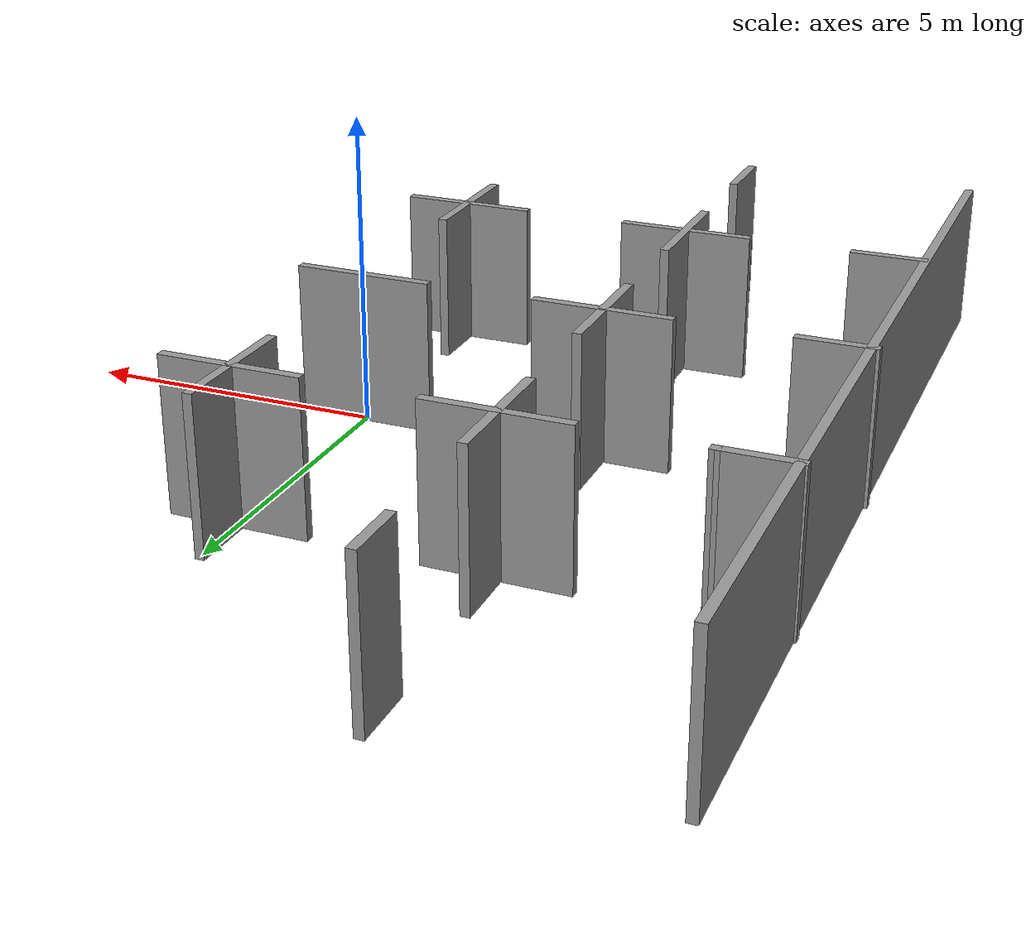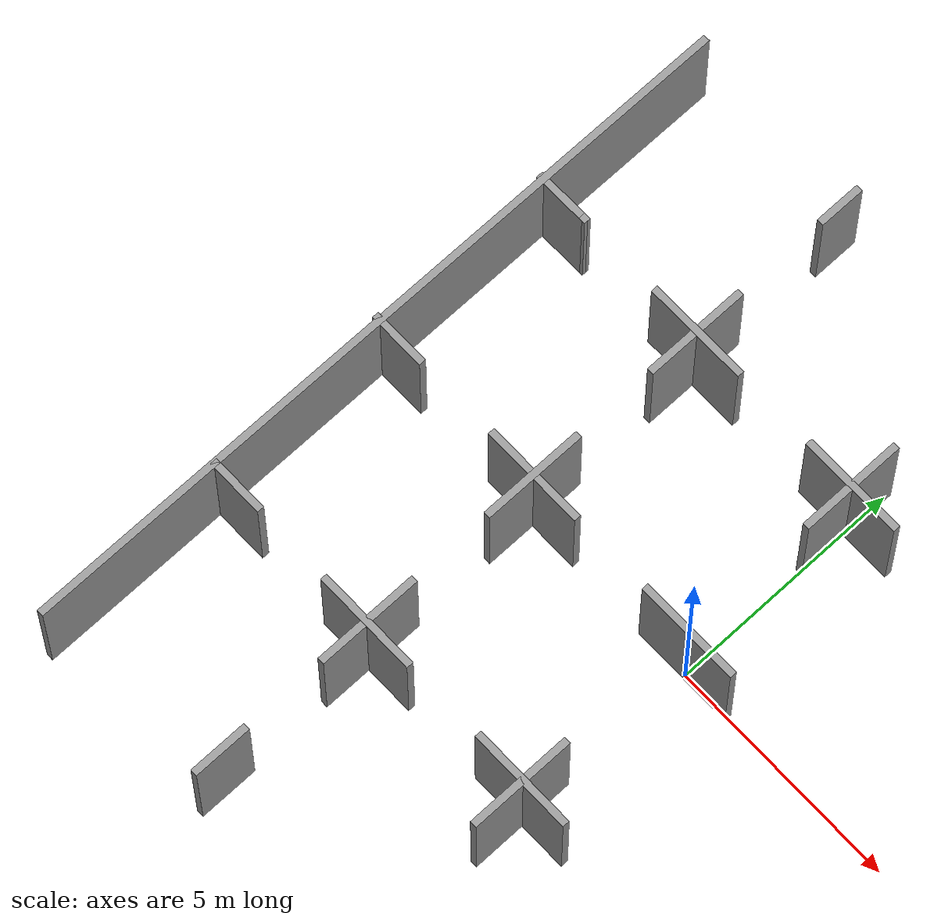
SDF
<sdf version="1.6">
 <model name="grid">
  <link name="Wall_100">
   <pose>-4.03249 -4.01202 0 0 -0 0</pose>
   <visual name="Wall_100_Visual">
    <pose>0 0 1.25 0 -0 0</pose>
    <geometry><box><size>2.25 0.15 2.5</size></box></geometry>
    <material>
     <script><uri>file://media/materials/scripts/gazebo.material</uri><name>Gazebo/Grey</name></script>
     <ambient>1 1 1 1</ambient>
     <diffuse>0.7 0.7 0.7 1</diffuse>
     <specular>0.01 0.01 0.01 1</specular>
     <emissive>0 0 0 1</emissive>
    </material>
   </visual>
   <collision name="Wall_100_Collision">
    <pose>0 0 1.25 0 -0 0</pose>
    <geometry><box><size>2.25 0.15 2.5</size></box></geometry>
    <surface>
     <friction>
      <ode><mu>1</mu><mu2>1</mu2><fdir1>0 0 0</fdir1><slip1>0</slip1><slip2>0</slip2></ode>
      <torsional>
       <coefficient>1</coefficient>
       <patch_radius>0</patch_radius>
       <surface_radius>0</surface_radius>
       <use_patch_radius>1</use_patch_radius>
       <ode><slip>0</slip></ode>
      </torsional>
     </friction>
     <bounce><restitution_coefficient>0</restitution_coefficient><threshold>1e+06</threshold></bounce>
     <contact>
      <collide_without_contact>0</collide_without_contact>
      <collide_without_contact_bitmask>1</collide_without_contact_bitmask>
      <collide_bitmask>1</collide_bitmask>
      <ode>
       <soft_cfm>0</soft_cfm>
       <soft_erp>0.2</soft_erp>
       <kp>1e+13</kp>
       <kd>1</kd>
       <max_vel>0.01</max_vel>
       <min_depth>0</min_depth>
      </ode>
      <bullet>
       <split_impulse>1</split_impulse>
       <split_impulse_penetration_threshold>-0.01</split_impulse_penetration_threshold>
       <soft_cfm>0</soft_cfm>
       <soft_erp>0.2</soft_erp>
       <kp>1e+13</kp>
       <kd>1</kd>
      </bullet>
     </contact>
    </surface>
   </collision>
  </link>
  <link name="Wall_102">
   <pose>-0.033055 0.014999 0 0 -0 0</pose>
   <visual name="Wall_102_Visual">
    <pose>0 0 1.25 0 -0 0</pose>
    <geometry><box><size>2.25 0.15 2.5</size></box></geometry>
    <material>
     <script><uri>file://media/materials/scripts/gazebo.material</uri><name>Gazebo/Grey</name></script>
     <ambient>1 1 1 1</ambient>
     <diffuse>0.7 0.7 0.7 1</diffuse>
     <specular>0.01 0.01 0.01 1</specular>
     <emissive>0 0 0 1</emissive>
    </material>
   </visual>
   <collision name="Wall_102_Collision">
    <pose>0 0 1.25 0 -0 0</pose>
    <geometry><box><size>2.25 0.15 2.5</size></box></geometry>
    <surface>
     <friction>
      <ode><mu>1</mu><mu2>1</mu2><fdir1>0 0 0</fdir1><slip1>0</slip1><slip2>0</slip2></ode>
      <torsional>
       <coefficient>1</coefficient>
       <patch_radius>0</patch_radius>
       <surface_radius>0</surface_radius>
       <use_patch_radius>1</use_patch_radius>
       <ode><slip>0</slip></ode>
      </torsional>
     </friction>
     <bounce><restitution_coefficient>0</restitution_coefficient><threshold>1e+06</threshold></bounce>
     <contact>
      <collide_without_contact>0</collide_without_contact>
      <collide_without_contact_bitmask>1</collide_without_contact_bitmask>
      <collide_bitmask>1</collide_bitmask>
      <ode>
       <soft_cfm>0</soft_cfm>
       <soft_erp>0.2</soft_erp>
       <kp>1e+13</kp>
       <kd>1</kd>
       <max_vel>0.01</max_vel>
       <min_depth>0</min_depth>
      </ode>
      <bullet>
       <split_impulse>1</split_impulse>
       <split_impulse_penetration_threshold>-0.01</split_impulse_penetration_threshold>
       <soft_cfm>0</soft_cfm>
       <soft_erp>0.2</soft_erp>
       <kp>1e+13</kp>
       <kd>1</kd>
      </bullet>
     </contact>
    </surface>
   </collision>
  </link>
  <link name="Wall_11">
   <pose>-6.98644 4.04261 0 0 -0 0</pose>
   <visual name="Wall_11_Visual">
    <pose>0 0 1.25 0 -0 0</pose>
    <geometry><box><size>0.15 0.15 2.5</size></box></geometry>
    <material>
     <script><uri>file://media/materials/scripts/gazebo.material</uri><name>Gazebo/Grey</name></script>
     <ambient>1 1 1 1</ambient>
     <diffuse>0.7 0.7 0.7 1</diffuse>
     <specular>0.01 0.01 0.01 1</specular>
     <emissive>0 0 0 1</emissive>
    </material>
   </visual>
   <collision name="Wall_11_Collision">
    <pose>0 0 1.25 0 -0 0</pose>
    <geometry><box><size>0.15 0.15 2.5</size></box></geometry>
    <surface>
     <friction>
      <ode><mu>1</mu><mu2>1</mu2><fdir1>0 0 0</fdir1><slip1>0</slip1><slip2>0</slip2></ode>
      <torsional>
       <coefficient>1</coefficient>
       <patch_radius>0</patch_radius>
       <surface_radius>0</surface_radius>
       <use_patch_radius>1</use_patch_radius>
       <ode><slip>0</slip></ode>
      </torsional>
     </friction>
     <bounce><restitution_coefficient>0</restitution_coefficient><threshold>1e+06</threshold></bounce>
     <contact>
      <collide_without_contact>0</collide_without_contact>
      <collide_without_contact_bitmask>1</collide_without_contact_bitmask>
      <collide_bitmask>1</collide_bitmask>
      <ode>
       <soft_cfm>0</soft_cfm>
       <soft_erp>0.2</soft_erp>
       <kp>1e+13</kp>
       <kd>1</kd>
       <max_vel>0.01</max_vel>
       <min_depth>0</min_depth>
      </ode>
      <bullet>
       <split_impulse>1</split_impulse>
       <split_impulse_penetration_threshold>-0.01</split_impulse_penetration_threshold>
       <soft_cfm>0</soft_cfm>
       <soft_erp>0.2</soft_erp>
       <kp>1e+13</kp>
       <kd>1</kd>
      </bullet>
     </contact>
    </surface>
   </collision>
  </link>
  <link name="Wall_15">
   <pose>-7.5627 0.013696 0 0 -0 0</pose>
   <visual name="Wall_15_Visual">
    <pose>0 0 1.25 0 -0 0</pose>
    <geometry><box><size>1.25 0.15 2.5</size></box></geometry>
    <material>
     <script><uri>file://media/materials/scripts/gazebo.material</uri><name>Gazebo/Grey</name></script>
     <ambient>1 1 1 1</ambient>
     <diffuse>0.7 0.7 0.7 1</diffuse>
     <specular>0.01 0.01 0.01 1</specular>
     <emissive>0 0 0 1</emissive>
    </material>
   </visual>
   <collision name="Wall_15_Collision">
    <pose>0 0 1.25 0 -0 0</pose>
    <geometry><box><size>1.25 0.15 2.5</size></box></geometry>
    <surface>
     <friction>
      <ode><mu>1</mu><mu2>1</mu2><fdir1>0 0 0</fdir1><slip1>0</slip1><slip2>0</slip2></ode>
      <torsional>
       <coefficient>1</coefficient>
       <patch_radius>0</patch_radius>
       <surface_radius>0</surface_radius>
       <use_patch_radius>1</use_patch_radius>
       <ode><slip>0</slip></ode>
      </torsional>
     </friction>
     <bounce><restitution_coefficient>0</restitution_coefficient><threshold>1e+06</threshold></bounce>
     <contact>
      <collide_without_contact>0</collide_without_contact>
      <collide_without_contact_bitmask>1</collide_without_contact_bitmask>
      <collide_bitmask>1</collide_bitmask>
      <ode>
       <soft_cfm>0</soft_cfm>
       <soft_erp>0.2</soft_erp>
       <kp>1e+13</kp>
       <kd>1</kd>
       <max_vel>0.01</max_vel>
       <min_depth>0</min_depth>
      </ode>
      <bullet>
       <split_impulse>1</split_impulse>
       <split_impulse_penetration_threshold>-0.01</split_impulse_penetration_threshold>
       <soft_cfm>0</soft_cfm>
       <soft_erp>0.2</soft_erp>
       <kp>1e+13</kp>
       <kd>1</kd>
      </bullet>
     </contact>
    </surface>
   </collision>
  </link>
  <link name="Wall_21">
   <pose>-0.027047 3.99209 0 0 0 -1.5708</pose>
   <visual name="Wall_21_Visual">
    <pose>0 0 1.25 0 -0 0</pose>
    <geometry><box><size>2.25 0.15 2.5</size></box></geometry>
    <material>
     <script><uri>file://media/materials/scripts/gazebo.material</uri><name>Gazebo/Grey</name></script>
     <ambient>1 1 1 1</ambient>
     <diffuse>0.7 0.7 0.7 1</diffuse>
     <specular>0.01 0.01 0.01 1</specular>
     <emissive>0 0 0 1</emissive>
    </material>
   </visual>
   <collision name="Wall_21_Collision">
    <pose>0 0 1.25 0 -0 0</pose>
    <geometry><box><size>2.25 0.15 2.5</size></box></geometry>
    <surface>
     <friction>
      <ode><mu>1</mu><mu2>1</mu2><fdir1>0 0 0</fdir1><slip1>0</slip1><slip2>0</slip2></ode>
      <torsional>
       <coefficient>1</coefficient>
       <patch_radius>0</patch_radius>
       <surface_radius>0</surface_radius>
       <use_patch_radius>1</use_patch_radius>
       <ode><slip>0</slip></ode>
      </torsional>
     </friction>
     <bounce><restitution_coefficient>0</restitution_coefficient><threshold>1e+06</threshold></bounce>
     <contact>
      <collide_without_contact>0</collide_without_contact>
      <collide_without_contact_bitmask>1</collide_without_contact_bitmask>
      <collide_bitmask>1</collide_bitmask>
      <ode>
       <soft_cfm>0</soft_cfm>
       <soft_erp>0.2</soft_erp>
       <kp>1e+13</kp>
       <kd>1</kd>
       <max_vel>0.01</max_vel>
       <min_depth>0</min_depth>
      </ode>
      <bullet>
       <split_impulse>1</split_impulse>
       <split_impulse_penetration_threshold>-0.01</split_impulse_penetration_threshold>
       <soft_cfm>0</soft_cfm>
       <soft_erp>0.2</soft_erp>
       <kp>1e+13</kp>
       <kd>1</kd>
      </bullet>
     </contact>
    </surface>
   </collision>
  </link>
  <link name="Wall_23">
   <pose>-0.019757 4.0163 0 0 -0 0</pose>
   <visual name="Wall_23_Visual">
    <pose>0 0 1.25 0 -0 0</pose>
    <geometry><box><size>2.25 0.15 2.5</size></box></geometry>
    <material>
     <script><uri>file://media/materials/scripts/gazebo.material</uri><name>Gazebo/Grey</name></script>
     <ambient>1 1 1 1</ambient>
     <diffuse>0.7 0.7 0.7 1</diffuse>
     <specular>0.01 0.01 0.01 1</specular>
     <emissive>0 0 0 1</emissive>
    </material>
   </visual>
   <collision name="Wall_23_Collision">
    <pose>0 0 1.25 0 -0 0</pose>
    <geometry><box><size>2.25 0.15 2.5</size></box></geometry>
    <surface>
     <friction>
      <ode><mu>1</mu><mu2>1</mu2><fdir1>0 0 0</fdir1><slip1>0</slip1><slip2>0</slip2></ode>
      <torsional>
       <coefficient>1</coefficient>
       <patch_radius>0</patch_radius>
       <surface_radius>0</surface_radius>
       <use_patch_radius>1</use_patch_radius>
       <ode><slip>0</slip></ode>
      </torsional>
     </friction>
     <bounce><restitution_coefficient>0</restitution_coefficient><threshold>1e+06</threshold></bounce>
     <contact>
      <collide_without_contact>0</collide_without_contact>
      <collide_without_contact_bitmask>1</collide_without_contact_bitmask>
      <collide_bitmask>1</collide_bitmask>
      <ode>
       <soft_cfm>0</soft_cfm>
       <soft_erp>0.2</soft_erp>
       <kp>1e+13</kp>
       <kd>1</kd>
       <max_vel>0.01</max_vel>
       <min_depth>0</min_depth>
      </ode>
      <bullet>
       <split_impulse>1</split_impulse>
       <split_impulse_penetration_threshold>-0.01</split_impulse_penetration_threshold>
       <soft_cfm>0</soft_cfm>
       <soft_erp>0.2</soft_erp>
       <kp>1e+13</kp>
       <kd>1</kd>
      </bullet>
     </contact>
    </surface>
   </collision>
  </link>
  <link name="Wall_4">
   <pose>-8.05885 -0.004256 0 0 0 -1.5708</pose>
   <visual name="Wall_4_Visual">
    <pose>0 0 1.25 0 -0 0</pose>
    <geometry><box><size>16.25 0.15 2.5</size></box></geometry>
    <material>
     <script><uri>file://media/materials/scripts/gazebo.material</uri><name>Gazebo/Grey</name></script>
     <ambient>1 1 1 1</ambient>
     <diffuse>0.7 0.7 0.7 1</diffuse>
     <specular>0.01 0.01 0.01 1</specular>
     <emissive>0 0 0 1</emissive>
    </material>
   </visual>
   <collision name="Wall_4_Collision">
    <pose>0 0 1.25 0 -0 0</pose>
    <geometry><box><size>16.25 0.15 2.5</size></box></geometry>
    <surface>
     <friction>
      <ode><mu>1</mu><mu2>1</mu2><fdir1>0 0 0</fdir1><slip1>0</slip1><slip2>0</slip2></ode>
      <torsional>
       <coefficient>1</coefficient>
       <patch_radius>0</patch_radius>
       <surface_radius>0</surface_radius>
       <use_patch_radius>1</use_patch_radius>
       <ode><slip>0</slip></ode>
      </torsional>
     </friction>
     <bounce><restitution_coefficient>0</restitution_coefficient><threshold>1e+06</threshold></bounce>
     <contact>
      <collide_without_contact>0</collide_without_contact>
      <collide_without_contact_bitmask>1</collide_without_contact_bitmask>
      <collide_bitmask>1</collide_bitmask>
      <ode>
       <soft_cfm>0</soft_cfm>
       <soft_erp>0.2</soft_erp>
       <kp>1e+13</kp>
       <kd>1</kd>
       <max_vel>0.01</max_vel>
       <min_depth>0</min_depth>
      </ode>
      <bullet>
       <split_impulse>1</split_impulse>
       <split_impulse_penetration_threshold>-0.01</split_impulse_penetration_threshold>
       <soft_cfm>0</soft_cfm>
       <soft_erp>0.2</soft_erp>
       <kp>1e+13</kp>
       <kd>1</kd>
      </bullet>
     </contact>
    </surface>
   </collision>
  </link>
  <link name="Wall_52">
   <pose>-7.53951 4.03951 0 0 -0 0.005602</pose>
   <visual name="Wall_52_Visual">
    <pose>0 0 1.25 0 -0 0</pose>
    <geometry><box><size>1.25617 0.15 2.5</size></box></geometry>
    <material>
     <script><uri>file://media/materials/scripts/gazebo.material</uri><name>Gazebo/Grey</name></script>
     <ambient>1 1 1 1</ambient>
     <diffuse>0.7 0.7 0.7 1</diffuse>
     <specular>0.01 0.01 0.01 1</specular>
     <emissive>0 0 0 1</emissive>
    </material>
   </visual>
   <collision name="Wall_52_Collision">
    <pose>0 0 1.25 0 -0 0</pose>
    <geometry><box><size>1.25617 0.15 2.5</size></box></geometry>
    <surface>
     <friction>
      <ode><mu>1</mu><mu2>1</mu2><fdir1>0 0 0</fdir1><slip1>0</slip1><slip2>0</slip2></ode>
      <torsional>
       <coefficient>1</coefficient>
       <patch_radius>0</patch_radius>
       <surface_radius>0</surface_radius>
       <use_patch_radius>1</use_patch_radius>
       <ode><slip>0</slip></ode>
      </torsional>
     </friction>
     <bounce><restitution_coefficient>0</restitution_coefficient><threshold>1e+06</threshold></bounce>
     <contact>
      <collide_without_contact>0</collide_without_contact>
      <collide_without_contact_bitmask>1</collide_without_contact_bitmask>
      <collide_bitmask>1</collide_bitmask>
      <ode>
       <soft_cfm>0</soft_cfm>
       <soft_erp>0.2</soft_erp>
       <kp>1e+13</kp>
       <kd>1</kd>
       <max_vel>0.01</max_vel>
       <min_depth>0</min_depth>
      </ode>
      <bullet>
       <split_impulse>1</split_impulse>
       <split_impulse_penetration_threshold>-0.01</split_impulse_penetration_threshold>
       <soft_cfm>0</soft_cfm>
       <soft_erp>0.2</soft_erp>
       <kp>1e+13</kp>
       <kd>1</kd>
      </bullet>
     </contact>
    </surface>
   </collision>
  </link>
  <link name="Wall_54">
   <pose>-4.02965 7.5939 0 0 0 -1.5708</pose>
   <visual name="Wall_54_Visual">
    <pose>0 0 1.25 0 -0 0</pose>
    <geometry><box><size>1 0.15 2.5</size></box></geometry>
    <material>
     <script><uri>file://media/materials/scripts/gazebo.material</uri><name>Gazebo/Grey</name></script>
     <ambient>1 1 1 1</ambient>
     <diffuse>0.7 0.7 0.7 1</diffuse>
     <specular>0.01 0.01 0.01 1</specular>
     <emissive>0 0 0 1</emissive>
    </material>
   </visual>
   <collision name="Wall_54_Collision">
    <pose>0 0 1.25 0 -0 0</pose>
    <geometry><box><size>1 0.15 2.5</size></box></geometry>
    <surface>
     <friction>
      <ode><mu>1</mu><mu2>1</mu2><fdir1>0 0 0</fdir1><slip1>0</slip1><slip2>0</slip2></ode>
      <torsional>
       <coefficient>1</coefficient>
       <patch_radius>0</patch_radius>
       <surface_radius>0</surface_radius>
       <use_patch_radius>1</use_patch_radius>
       <ode><slip>0</slip></ode>
      </torsional>
     </friction>
     <bounce><restitution_coefficient>0</restitution_coefficient><threshold>1e+06</threshold></bounce>
     <contact>
      <collide_without_contact>0</collide_without_contact>
      <collide_without_contact_bitmask>1</collide_without_contact_bitmask>
      <collide_bitmask>1</collide_bitmask>
      <ode>
       <soft_cfm>0</soft_cfm>
       <soft_erp>0.2</soft_erp>
       <kp>1e+13</kp>
       <kd>1</kd>
       <max_vel>0.01</max_vel>
       <min_depth>0</min_depth>
      </ode>
      <bullet>
       <split_impulse>1</split_impulse>
       <split_impulse_penetration_threshold>-0.01</split_impulse_penetration_threshold>
       <soft_cfm>0</soft_cfm>
       <soft_erp>0.2</soft_erp>
       <kp>1e+13</kp>
       <kd>1</kd>
      </bullet>
     </contact>
    </surface>
   </collision>
  </link>
  <link name="Wall_72">
   <pose>-0.022705 -4.05508 0 0 0 -1.5708</pose>
   <visual name="Wall_72_Visual">
    <pose>0 0 1.25 0 -0 0</pose>
    <geometry><box><size>2.25 0.15 2.5</size></box></geometry>
    <material>
     <script><uri>file://media/materials/scripts/gazebo.material</uri><name>Gazebo/Grey</name></script>
     <ambient>1 1 1 1</ambient>
     <diffuse>0.7 0.7 0.7 1</diffuse>
     <specular>0.01 0.01 0.01 1</specular>
     <emissive>0 0 0 1</emissive>
    </material>
   </visual>
   <collision name="Wall_72_Collision">
    <pose>0 0 1.25 0 -0 0</pose>
    <geometry><box><size>2.25 0.15 2.5</size></box></geometry>
    <surface>
     <friction>
      <ode><mu>1</mu><mu2>1</mu2><fdir1>0 0 0</fdir1><slip1>0</slip1><slip2>0</slip2></ode>
      <torsional>
       <coefficient>1</coefficient>
       <patch_radius>0</patch_radius>
       <surface_radius>0</surface_radius>
       <use_patch_radius>1</use_patch_radius>
       <ode><slip>0</slip></ode>
      </torsional>
     </friction>
     <bounce><restitution_coefficient>0</restitution_coefficient><threshold>1e+06</threshold></bounce>
     <contact>
      <collide_without_contact>0</collide_without_contact>
      <collide_without_contact_bitmask>1</collide_without_contact_bitmask>
      <collide_bitmask>1</collide_bitmask>
      <ode>
       <soft_cfm>0</soft_cfm>
       <soft_erp>0.2</soft_erp>
       <kp>1e+13</kp>
       <kd>1</kd>
       <max_vel>0.01</max_vel>
       <min_depth>0</min_depth>
      </ode>
      <bullet>
       <split_impulse>1</split_impulse>
       <split_impulse_penetration_threshold>-0.01</split_impulse_penetration_threshold>
       <soft_cfm>0</soft_cfm>
       <soft_erp>0.2</soft_erp>
       <kp>1e+13</kp>
       <kd>1</kd>
      </bullet>
     </contact>
    </surface>
   </collision>
  </link>
  <link name="Wall_74">
   <pose>-0.052526 -3.99365 0 0 -0 0</pose>
   <visual name="Wall_74_Visual">
    <pose>0 0 1.25 0 -0 0</pose>
    <geometry><box><size>2.25 0.15 2.5</size></box></geometry>
    <material>
     <script><uri>file://media/materials/scripts/gazebo.material</uri><name>Gazebo/Grey</name></script>
     <ambient>1 1 1 1</ambient>
     <diffuse>0.7 0.7 0.7 1</diffuse>
     <specular>0.01 0.01 0.01 1</specular>
     <emissive>0 0 0 1</emissive>
    </material>
   </visual>
   <collision name="Wall_74_Collision">
    <pose>0 0 1.25 0 -0 0</pose>
    <geometry><box><size>2.25 0.15 2.5</size></box></geometry>
    <surface>
     <friction>
      <ode><mu>1</mu><mu2>1</mu2><fdir1>0 0 0</fdir1><slip1>0</slip1><slip2>0</slip2></ode>
      <torsional>
       <coefficient>1</coefficient>
       <patch_radius>0</patch_radius>
       <surface_radius>0</surface_radius>
       <use_patch_radius>1</use_patch_radius>
       <ode><slip>0</slip></ode>
      </torsional>
     </friction>
     <bounce><restitution_coefficient>0</restitution_coefficient><threshold>1e+06</threshold></bounce>
     <contact>
      <collide_without_contact>0</collide_without_contact>
      <collide_without_contact_bitmask>1</collide_without_contact_bitmask>
      <collide_bitmask>1</collide_bitmask>
      <ode>
       <soft_cfm>0</soft_cfm>
       <soft_erp>0.2</soft_erp>
       <kp>1e+13</kp>
       <kd>1</kd>
       <max_vel>0.01</max_vel>
       <min_depth>0</min_depth>
      </ode>
      <bullet>
       <split_impulse>1</split_impulse>
       <split_impulse_penetration_threshold>-0.01</split_impulse_penetration_threshold>
       <soft_cfm>0</soft_cfm>
       <soft_erp>0.2</soft_erp>
       <kp>1e+13</kp>
       <kd>1</kd>
      </bullet>
     </contact>
    </surface>
   </collision>
  </link>
  <link name="Wall_82">
   <pose>-7.4672 -3.98184 0 0 -0 0</pose>
   <visual name="Wall_82_Visual">
    <pose>0 0 1.25 0 -0 0</pose>
    <geometry><box><size>1.25 0.15 2.5</size></box></geometry>
    <material>
     <script><uri>file://media/materials/scripts/gazebo.material</uri><name>Gazebo/Grey</name></script>
     <ambient>1 1 1 1</ambient>
     <diffuse>0.7 0.7 0.7 1</diffuse>
     <specular>0.01 0.01 0.01 1</specular>
     <emissive>0 0 0 1</emissive>
    </material>
   </visual>
   <collision name="Wall_82_Collision">
    <pose>0 0 1.25 0 -0 0</pose>
    <geometry><box><size>1.25 0.15 2.5</size></box></geometry>
    <surface>
     <friction>
      <ode><mu>1</mu><mu2>1</mu2><fdir1>0 0 0</fdir1><slip1>0</slip1><slip2>0</slip2></ode>
      <torsional>
       <coefficient>1</coefficient>
       <patch_radius>0</patch_radius>
       <surface_radius>0</surface_radius>
       <use_patch_radius>1</use_patch_radius>
       <ode><slip>0</slip></ode>
      </torsional>
     </friction>
     <bounce><restitution_coefficient>0</restitution_coefficient><threshold>1e+06</threshold></bounce>
     <contact>
      <collide_without_contact>0</collide_without_contact>
      <collide_without_contact_bitmask>1</collide_without_contact_bitmask>
      <collide_bitmask>1</collide_bitmask>
      <ode>
       <soft_cfm>0</soft_cfm>
       <soft_erp>0.2</soft_erp>
       <kp>1e+13</kp>
       <kd>1</kd>
       <max_vel>0.01</max_vel>
       <min_depth>0</min_depth>
      </ode>
      <bullet>
       <split_impulse>1</split_impulse>
       <split_impulse_penetration_threshold>-0.01</split_impulse_penetration_threshold>
       <soft_cfm>0</soft_cfm>
       <soft_erp>0.2</soft_erp>
       <kp>1e+13</kp>
       <kd>1</kd>
      </bullet>
     </contact>
    </surface>
   </collision>
  </link>
  <link name="Wall_84">
   <pose>-4.03128 -7.48705 0 0 -0 1.5708</pose>
   <visual name="Wall_84_Visual">
    <pose>0 0 1.25 0 -0 0</pose>
    <geometry><box><size>1.25 0.15 2.5</size></box></geometry>
    <material>
     <script><uri>file://media/materials/scripts/gazebo.material</uri><name>Gazebo/Grey</name></script>
     <ambient>1 1 1 1</ambient>
     <diffuse>0.7 0.7 0.7 1</diffuse>
     <specular>0.01 0.01 0.01 1</specular>
     <emissive>0 0 0 1</emissive>
    </material>
   </visual>
   <collision name="Wall_84_Collision">
    <pose>0 0 1.25 0 -0 0</pose>
    <geometry><box><size>1.25 0.15 2.5</size></box></geometry>
    <surface>
     <friction>
      <ode><mu>1</mu><mu2>1</mu2><fdir1>0 0 0</fdir1><slip1>0</slip1><slip2>0</slip2></ode>
      <torsional>
       <coefficient>1</coefficient>
       <patch_radius>0</patch_radius>
       <surface_radius>0</surface_radius>
       <use_patch_radius>1</use_patch_radius>
       <ode><slip>0</slip></ode>
      </torsional>
     </friction>
     <bounce><restitution_coefficient>0</restitution_coefficient><threshold>1e+06</threshold></bounce>
     <contact>
      <collide_without_contact>0</collide_without_contact>
      <collide_without_contact_bitmask>1</collide_without_contact_bitmask>
      <collide_bitmask>1</collide_bitmask>
      <ode>
       <soft_cfm>0</soft_cfm>
       <soft_erp>0.2</soft_erp>
       <kp>1e+13</kp>
       <kd>1</kd>
       <max_vel>0.01</max_vel>
       <min_depth>0</min_depth>
      </ode>
      <bullet>
       <split_impulse>1</split_impulse>
       <split_impulse_penetration_threshold>-0.01</split_impulse_penetration_threshold>
       <soft_cfm>0</soft_cfm>
       <soft_erp>0.2</soft_erp>
       <kp>1e+13</kp>
       <kd>1</kd>
      </bullet>
     </contact>
    </surface>
   </collision>
  </link>
  <link name="Wall_90">
   <pose>-4.01687 4.02651 0 0 -0 0</pose>
   <visual name="Wall_90_Visual">
    <pose>0 0 1.25 0 -0 0</pose>
    <geometry><box><size>2.25 0.15 2.5</size></box></geometry>
    <material>
     <script><uri>file://media/materials/scripts/gazebo.material</uri><name>Gazebo/Grey</name></script>
     <ambient>1 1 1 1</ambient>
     <diffuse>0.7 0.7 0.7 1</diffuse>
     <specular>0.01 0.01 0.01 1</specular>
     <emissive>0 0 0 1</emissive>
    </material>
   </visual>
   <collision name="Wall_90_Collision">
    <pose>0 0 1.25 0 -0 0</pose>
    <geometry><box><size>2.25 0.15 2.5</size></box></geometry>
    <surface>
     <friction>
      <ode><mu>1</mu><mu2>1</mu2><fdir1>0 0 0</fdir1><slip1>0</slip1><slip2>0</slip2></ode>
      <torsional>
       <coefficient>1</coefficient>
       <patch_radius>0</patch_radius>
       <surface_radius>0</surface_radius>
       <use_patch_radius>1</use_patch_radius>
       <ode><slip>0</slip></ode>
      </torsional>
     </friction>
     <bounce><restitution_coefficient>0</restitution_coefficient><threshold>1e+06</threshold></bounce>
     <contact>
      <collide_without_contact>0</collide_without_contact>
      <collide_without_contact_bitmask>1</collide_without_contact_bitmask>
      <collide_bitmask>1</collide_bitmask>
      <ode>
       <soft_cfm>0</soft_cfm>
       <soft_erp>0.2</soft_erp>
       <kp>1e+13</kp>
       <kd>1</kd>
       <max_vel>0.01</max_vel>
       <min_depth>0</min_depth>
      </ode>
      <bullet>
       <split_impulse>1</split_impulse>
       <split_impulse_penetration_threshold>-0.01</split_impulse_penetration_threshold>
       <soft_cfm>0</soft_cfm>
       <soft_erp>0.2</soft_erp>
       <kp>1e+13</kp>
       <kd>1</kd>
      </bullet>
     </contact>
    </surface>
   </collision>
  </link>
  <link name="Wall_92">
   <pose>-4.03334 3.99789 0 0 0 -1.5708</pose>
   <visual name="Wall_92_Visual">
    <pose>0 0 1.25 0 -0 0</pose>
    <geometry><box><size>2.25 0.15 2.5</size></box></geometry>
    <material>
     <script><uri>file://media/materials/scripts/gazebo.material</uri><name>Gazebo/Grey</name></script>
     <ambient>1 1 1 1</ambient>
     <diffuse>0.7 0.7 0.7 1</diffuse>
     <specular>0.01 0.01 0.01 1</specular>
     <emissive>0 0 0 1</emissive>
    </material>
   </visual>
   <collision name="Wall_92_Collision">
    <pose>0 0 1.25 0 -0 0</pose>
    <geometry><box><size>2.25 0.15 2.5</size></box></geometry>
    <surface>
     <friction>
      <ode><mu>1</mu><mu2>1</mu2><fdir1>0 0 0</fdir1><slip1>0</slip1><slip2>0</slip2></ode>
      <torsional>
       <coefficient>1</coefficient>
       <patch_radius>0</patch_radius>
       <surface_radius>0</surface_radius>
       <use_patch_radius>1</use_patch_radius>
       <ode><slip>0</slip></ode>
      </torsional>
     </friction>
     <bounce><restitution_coefficient>0</restitution_coefficient><threshold>1e+06</threshold></bounce>
     <contact>
      <collide_without_contact>0</collide_without_contact>
      <collide_without_contact_bitmask>1</collide_without_contact_bitmask>
      <collide_bitmask>1</collide_bitmask>
      <ode>
       <soft_cfm>0</soft_cfm>
       <soft_erp>0.2</soft_erp>
       <kp>1e+13</kp>
       <kd>1</kd>
       <max_vel>0.01</max_vel>
       <min_depth>0</min_depth>
      </ode>
      <bullet>
       <split_impulse>1</split_impulse>
       <split_impulse_penetration_threshold>-0.01</split_impulse_penetration_threshold>
       <soft_cfm>0</soft_cfm>
       <soft_erp>0.2</soft_erp>
       <kp>1e+13</kp>
       <kd>1</kd>
      </bullet>
     </contact>
    </surface>
   </collision>
  </link>
  <link name="Wall_94">
   <pose>-4.0191 0.017137 0 0 -0 0</pose>
   <visual name="Wall_94_Visual">
    <pose>0 0 1.25 0 -0 0</pose>
    <geometry><box><size>2.25 0.15 2.5</size></box></geometry>
    <material>
     <script><uri>file://media/materials/scripts/gazebo.material</uri><name>Gazebo/Grey</name></script>
     <ambient>1 1 1 1</ambient>
     <diffuse>0.7 0.7 0.7 1</diffuse>
     <specular>0.01 0.01 0.01 1</specular>
     <emissive>0 0 0 1</emissive>
    </material>
   </visual>
   <collision name="Wall_94_Collision">
    <pose>0 0 1.25 0 -0 0</pose>
    <geometry><box><size>2.25 0.15 2.5</size></box></geometry>
    <surface>
     <friction>
      <ode><mu>1</mu><mu2>1</mu2><fdir1>0 0 0</fdir1><slip1>0</slip1><slip2>0</slip2></ode>
      <torsional>
       <coefficient>1</coefficient>
       <patch_radius>0</patch_radius>
       <surface_radius>0</surface_radius>
       <use_patch_radius>1</use_patch_radius>
       <ode><slip>0</slip></ode>
      </torsional>
     </friction>
     <bounce><restitution_coefficient>0</restitution_coefficient><threshold>1e+06</threshold></bounce>
     <contact>
      <collide_without_contact>0</collide_without_contact>
      <collide_without_contact_bitmask>1</collide_without_contact_bitmask>
      <collide_bitmask>1</collide_bitmask>
      <ode>
       <soft_cfm>0</soft_cfm>
       <soft_erp>0.2</soft_erp>
       <kp>1e+13</kp>
       <kd>1</kd>
       <max_vel>0.01</max_vel>
       <min_depth>0</min_depth>
      </ode>
      <bullet>
       <split_impulse>1</split_impulse>
       <split_impulse_penetration_threshold>-0.01</split_impulse_penetration_threshold>
       <soft_cfm>0</soft_cfm>
       <soft_erp>0.2</soft_erp>
       <kp>1e+13</kp>
       <kd>1</kd>
      </bullet>
     </contact>
    </surface>
   </collision>
  </link>
  <link name="Wall_96">
   <pose>-4.03293 0.003313 0 0 0 -1.5708</pose>
   <visual name="Wall_96_Visual">
    <pose>0 0 1.25 0 -0 0</pose>
    <geometry><box><size>2.25 0.15 2.5</size></box></geometry>
    <material>
     <script><uri>file://media/materials/scripts/gazebo.material</uri><name>Gazebo/Grey</name></script>
     <ambient>1 1 1 1</ambient>
     <diffuse>0.7 0.7 0.7 1</diffuse>
     <specular>0.01 0.01 0.01 1</specular>
     <emissive>0 0 0 1</emissive>
    </material>
   </visual>
   <collision name="Wall_96_Collision">
    <pose>0 0 1.25 0 -0 0</pose>
    <geometry><box><size>2.25 0.15 2.5</size></box></geometry>
    <surface>
     <friction>
      <ode><mu>1</mu><mu2>1</mu2><fdir1>0 0 0</fdir1><slip1>0</slip1><slip2>0</slip2></ode>
      <torsional>
       <coefficient>1</coefficient>
       <patch_radius>0</patch_radius>
       <surface_radius>0</surface_radius>
       <use_patch_radius>1</use_patch_radius>
       <ode><slip>0</slip></ode>
      </torsional>
     </friction>
     <bounce><restitution_coefficient>0</restitution_coefficient><threshold>1e+06</threshold></bounce>
     <contact>
      <collide_without_contact>0</collide_without_contact>
      <collide_without_contact_bitmask>1</collide_without_contact_bitmask>
      <collide_bitmask>1</collide_bitmask>
      <ode>
       <soft_cfm>0</soft_cfm>
       <soft_erp>0.2</soft_erp>
       <kp>1e+13</kp>
       <kd>1</kd>
       <max_vel>0.01</max_vel>
       <min_depth>0</min_depth>
      </ode>
      <bullet>
       <split_impulse>1</split_impulse>
       <split_impulse_penetration_threshold>-0.01</split_impulse_penetration_threshold>
       <soft_cfm>0</soft_cfm>
       <soft_erp>0.2</soft_erp>
       <kp>1e+13</kp>
       <kd>1</kd>
      </bullet>
     </contact>
    </surface>
   </collision>
  </link>
  <link name="Wall_98">
   <pose>-4.03437 -3.98631 0 0 0 -1.5708</pose>
   <visual name="Wall_98_Visual">
    <pose>0 0 1.25 0 -0 0</pose>
    <geometry><box><size>2.25 0.15 2.5</size></box></geometry>
    <material>
     <script><uri>file://media/materials/scripts/gazebo.material</uri><name>Gazebo/Grey</name></script>
     <ambient>1 1 1 1</ambient>
     <diffuse>0.7 0.7 0.7 1</diffuse>
     <specular>0.01 0.01 0.01 1</specular>
     <emissive>0 0 0 1</emissive>
    </material>
   </visual>
   <collision name="Wall_98_Collision">
    <pose>0 0 1.25 0 -0 0</pose>
    <geometry><box><size>2.25 0.15 2.5</size></box></geometry>
    <surface>
     <friction>
      <ode><mu>1</mu><mu2>1</mu2><fdir1>0 0 0</fdir1><slip1>0</slip1><slip2>0</slip2></ode>
      <torsional>
       <coefficient>1</coefficient>
       <patch_radius>0</patch_radius>
       <surface_radius>0</surface_radius>
       <use_patch_radius>1</use_patch_radius>
       <ode><slip>0</slip></ode>
      </torsional>
     </friction>
     <bounce><restitution_coefficient>0</restitution_coefficient><threshold>1e+06</threshold></bounce>
     <contact>
      <collide_without_contact>0</collide_without_contact>
      <collide_without_contact_bitmask>1</collide_without_contact_bitmask>
      <collide_bitmask>1</collide_bitmask>
      <ode>
       <soft_cfm>0</soft_cfm>
       <soft_erp>0.2</soft_erp>
       <kp>1e+13</kp>
       <kd>1</kd>
       <max_vel>0.01</max_vel>
       <min_depth>0</min_depth>
      </ode>
      <bullet>
       <split_impulse>1</split_impulse>
       <split_impulse_penetration_threshold>-0.01</split_impulse_penetration_threshold>
       <soft_cfm>0</soft_cfm>
       <soft_erp>0.2</soft_erp>
       <kp>1e+13</kp>
       <kd>1</kd>
      </bullet>
     </contact>
    </surface>
   </collision>
  </link>
  <static>1</static>
 </model>
</sdf>
